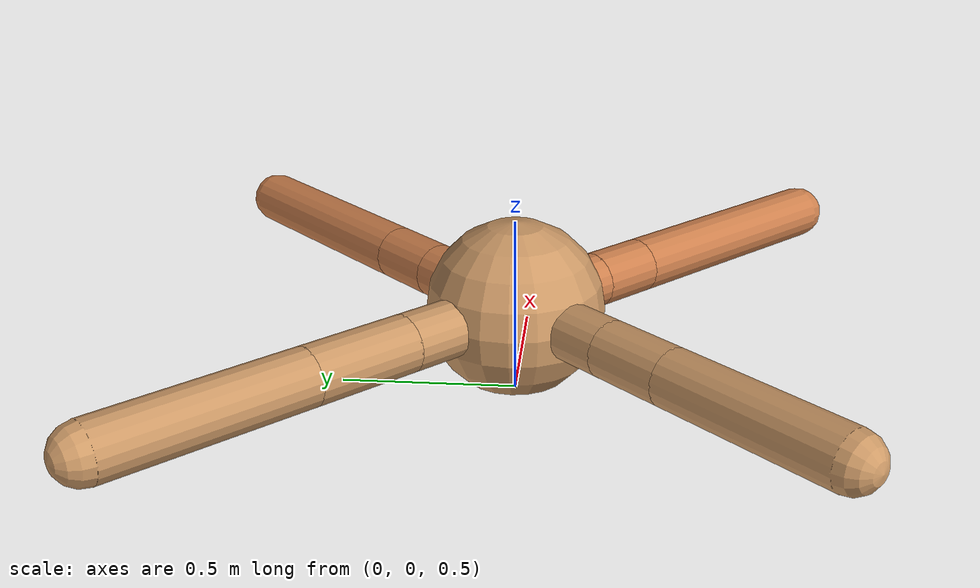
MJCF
<mujoco model="ant">
  <compiler angle="degree" coordinate="local" inertiafromgeom="true" />
  <option integrator="RK4" timestep="0.01" />
  <custom>
    <numeric data="0.0 0.0 0.55 1.0 0.0 0.0 0.0 0.0 1.0 0.0 -1.0 0.0 -1.0 0.0 1.0" name="init_qpos" />
  </custom>
  <default>
    <joint armature="1" damping="1" limited="true" />
    <geom conaffinity="0" condim="3" density="5.0" friction="1.5 0.1 0.1" margin="0.01" rgba="0.8 0.6 0.4 1" />
  </default>
  <worldbody>
    <body name="torso" pos="0 0 0.75">
      <geom name="torso_geom" pos="0 0 0" size="0.25" type="sphere" />

      <body name="front_left_leg" pos="0 0 0">
        <geom fromto="0.0 0.0 0.0 0.2511163653023342 0.2511163653023342 0.0" name="aux_1_geom" size="0.08" type="capsule" rgba=".8 .5 .3 1" />
        <body name="aux_1" pos="0.2511163653023342 0.2511163653023342 0.0">
          <joint axis="0 0 1" name="hip_1" pos="0.0 0.0 0.0" range="-40 40" type="hinge" />
          <geom fromto="0.0 0.0 0.0 0.1405517776267552 0.1405517776267552 0.0" name="left_leg_geom" size="0.08" type="capsule" rgba=".8 .5 .3 1" />
          <body pos="0.1405517776267552 0.1405517776267552 0.0" name="front_left_foot">
            <joint axis="-1 1 0" name="ankle_1" pos="0.0 0.0 0.0" range="30 100" type="hinge" />
            <geom fromto="0.0 0.0 0.0 0.5047978698863317 0.5047978698863317 0.0" name="left_ankle_geom" size="0.08" type="capsule" rgba=".8 .5 .3 1" />
          </body>
        </body>
      </body>
      <body name="front_right_leg" pos="0 0 0">
        <geom fromto="0.0 0.0 0.0 -0.26820669323827 0.26820669323827 0.0" name="aux_2_geom" size="0.08" type="capsule" />
        <body name="aux_2" pos="-0.26820669323827 0.26820669323827 0.0">
          <joint axis="0 0 1" name="hip_2" pos="0.0 0.0 0.0" range="-40 40" type="hinge" />
          <geom fromto="0.0 0.0 0.0 -0.21268721665149834 0.21268721665149834 0.0" name="right_leg_geom" size="0.08" type="capsule" />
          <body pos="-0.21268721665149834 0.21268721665149834 0.0" name="front_right_foot">
            <joint axis="1 1 0" name="ankle_2" pos="0.0 0.0 0.0" range="-100 -30" type="hinge" />
            <geom fromto="0.0 0.0 0.0 -0.4101463565238113 0.4101463565238113 0.0" name="right_ankle_geom" size="0.08" type="capsule" />
          </body>
        </body>
      </body>
      <body name="left_back_leg" pos="0 0 0">
        <geom fromto="0.0 0.0 0.0 -0.2635552040545197 -0.2635552040545197 0.0" name="aux_3_geom" size="0.08" type="capsule" />
        <body name="aux_3" pos="-0.2635552040545197 -0.2635552040545197 0.0">
          <joint axis="0 0 1" name="hip_3" pos="0.0 0.0 0.0" range="-40 40" type="hinge" />
          <geom fromto="0.0 0.0 0.0 -0.15323617665668193 -0.15323617665668193 0.0" name="back_leg_geom" size="0.08" type="capsule" />
          <body pos="-0.15323617665668193 -0.15323617665668193 0.0" name="left_back_foot">
            <joint axis="-1 1 0" name="ankle_3" pos="0.0 0.0 0.0" range="-100 -30" type="hinge" />
            <geom fromto="0.0 0.0 0.0 -0.38022845553144685 -0.38022845553144685 0.0" name="third_ankle_geom" size="0.08" type="capsule" />
          </body>
        </body>
      </body>
      <body name="right_back_leg" pos="0 0 0">
        <geom fromto="0.0 0.0 0.0 0.21458219138293666 -0.21458219138293666 0.0" name="aux_4_geom" size="0.08" type="capsule" rgba=".8 .5 .3 1" />
        <body name="aux_4" pos="0.21458219138293666 -0.21458219138293666 0.0">
          <joint axis="0 0 1" name="hip_4" pos="0.0 0.0 0.0" range="-40 40" type="hinge" />
          <geom fromto="0.0 0.0 0.0 0.1286386636551441 -0.1286386636551441 0.0" name="rightback_leg_geom" size="0.08" type="capsule" rgba=".8 .5 .3 1" />
          <body pos="0.1286386636551441 -0.1286386636551441 0.0" name="right_back_foot">
            <joint axis="1 1 0" name="ankle_4" pos="0.0 0.0 0.0" range="30 100" type="hinge" />
            <geom fromto="0.0 0.0 0.0 0.5398520414105784 -0.5398520414105784 0.0" name="fourth_ankle_geom" size="0.08" type="capsule" rgba=".8 .5 .3 1" />
          </body>
        </body>
      </body>
    </body>
  </worldbody>
  <actuator>
    <motor ctrllimited="true" ctrlrange="-1.0 1.0" joint="hip_4" gear="150" />
    <motor ctrllimited="true" ctrlrange="-1.0 1.0" joint="ankle_4" gear="150" />
    <motor ctrllimited="true" ctrlrange="-1.0 1.0" joint="hip_1" gear="150" />
    <motor ctrllimited="true" ctrlrange="-1.0 1.0" joint="ankle_1" gear="150" />
    <motor ctrllimited="true" ctrlrange="-1.0 1.0" joint="hip_2" gear="150" />
    <motor ctrllimited="true" ctrlrange="-1.0 1.0" joint="ankle_2" gear="150" />
    <motor ctrllimited="true" ctrlrange="-1.0 1.0" joint="hip_3" gear="150" />
    <motor ctrllimited="true" ctrlrange="-1.0 1.0" joint="ankle_3" gear="150" />
  </actuator>
</mujoco>
